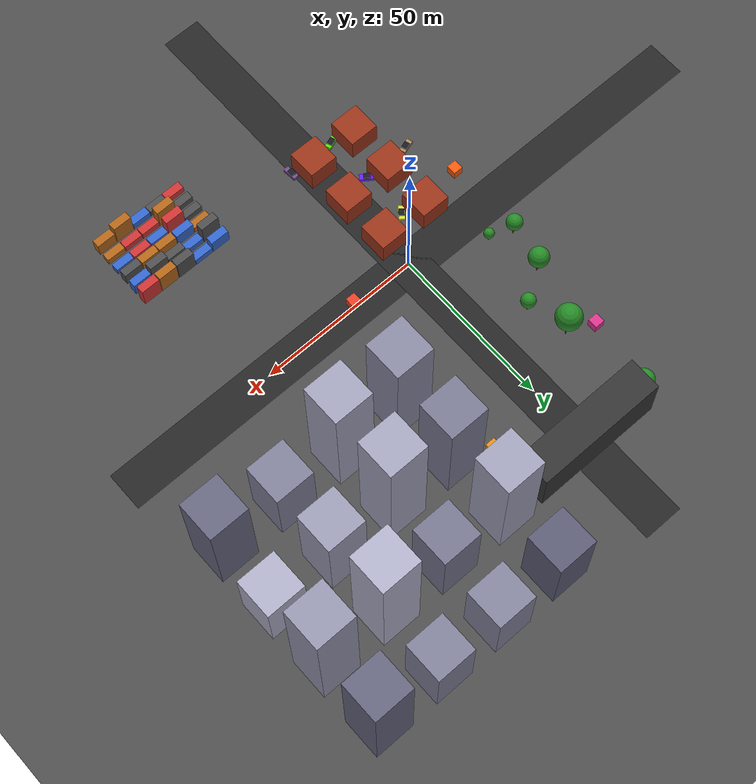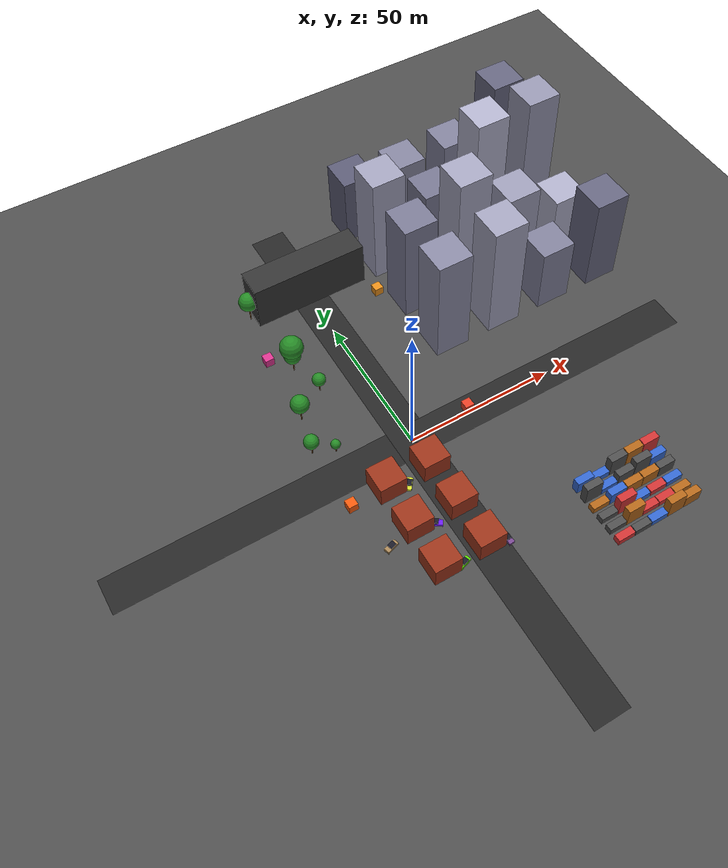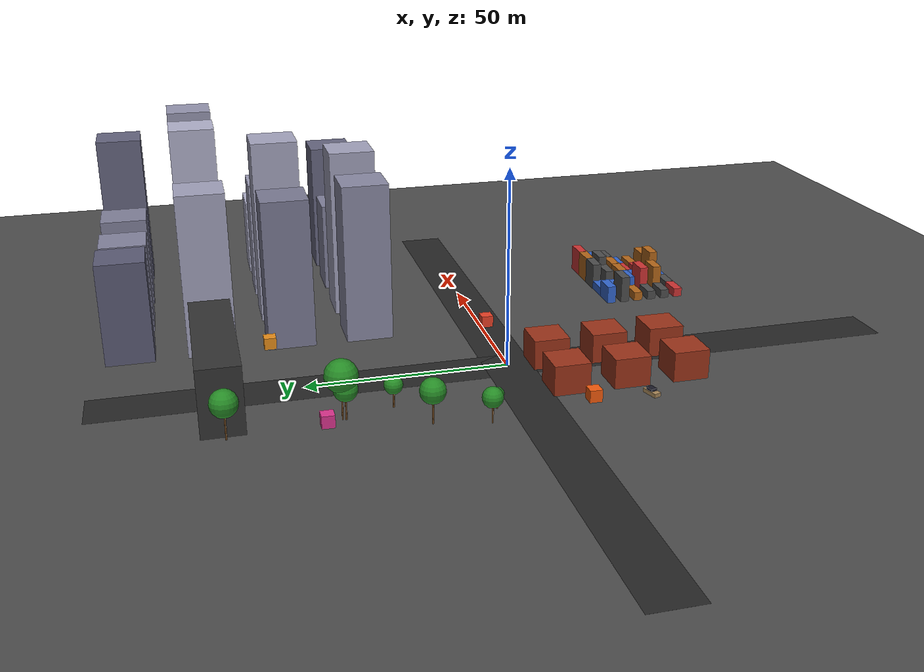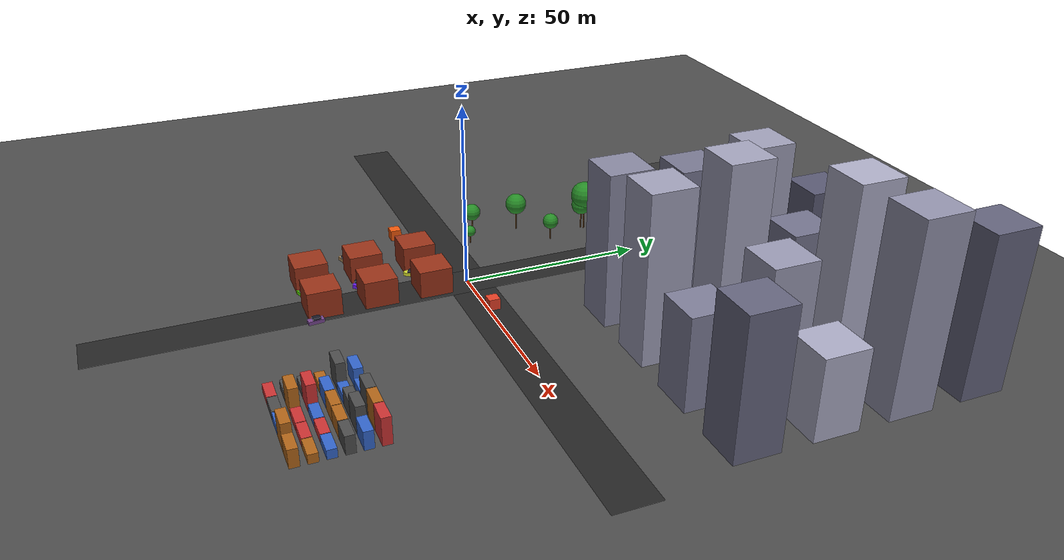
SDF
<sdf version="1.6">
 <world name="drone_city_dynamic">
  <include><uri>model://sun</uri></include>
  <model name="ground_plane">
   <static>true</static>
   <link name="link">
    <collision name="collision">
     <geometry><plane><normal>0 0 1</normal><size>400 400</size></plane></geometry>
    </collision>
    <visual name="visual">
     <geometry><plane><normal>0 0 1</normal><size>400 400</size></plane></geometry>
     <material><ambient>0.28 0.28 0.28 1</ambient><diffuse>0.3 0.3 0.3 1</diffuse></material>
    </visual>
   </link>
  </model>
  <model name="skyscraper_0_0">
   <static>true</static>
   <pose>30 30 20.635236983340796 0 0 0</pose>
   <link name="l">
    <collision name="c"><geometry><box><size>12 12 41.27047396668159</size></box></geometry></collision>
    <visual name="v">
     <geometry><box><size>12 12 41.27047396668159</size></box></geometry>
     <material><ambient>0.5356697835388005 0.5356697835388005 0.6356697835388004 1</ambient></material>
    </visual>
   </link>
  </model>
  <model name="skyscraper_0_1">
   <static>true</static>
   <pose>30 50 19.414077870680288 0 0 0</pose>
   <link name="l">
    <collision name="c"><geometry><box><size>12 12 38.828155741360575</size></box></geometry></collision>
    <visual name="v">
     <geometry><box><size>12 12 38.828155741360575</size></box></geometry>
     <material><ambient>0.4744506023521644 0.4744506023521644 0.5744506023521644 1</ambient></material>
    </visual>
   </link>
  </model>
  <model name="skyscraper_0_2">
   <static>true</static>
   <pose>30 70 20.96522107897338 0 0 0</pose>
   <link name="l">
    <collision name="c"><geometry><box><size>12 12 41.93044215794676</size></box></geometry></collision>
    <visual name="v">
     <geometry><box><size>12 12 41.93044215794676</size></box></geometry>
     <material><ambient>0.6274914331269397 0.6274914331269397 0.7274914331269396 1</ambient></material>
    </visual>
   </link>
  </model>
  <model name="skyscraper_0_3">
   <static>true</static>
   <pose>30 90 13.154930374189307 0 0 0</pose>
   <link name="l">
    <collision name="c"><geometry><box><size>12 12 26.309860748378615</size></box></geometry></collision>
    <visual name="v">
     <geometry><box><size>12 12 26.309860748378615</size></box></geometry>
     <material><ambient>0.3534178558720124 0.3534178558720124 0.45341785587201244 1</ambient></material>
    </visual>
   </link>
  </model>
  <model name="skyscraper_1_0">
   <static>true</static>
   <pose>50 30 22.395014628867237 0 0 0</pose>
   <link name="l">
    <collision name="c"><geometry><box><size>12 12 44.790029257734474</size></box></geometry></collision>
    <visual name="v">
     <geometry><box><size>12 12 44.790029257734474</size></box></geometry>
     <material><ambient>0.6317012608967205 0.6317012608967205 0.7317012608967205 1</ambient></material>
    </visual>
   </link>
  </model>
  <model name="skyscraper_1_1">
   <static>true</static>
   <pose>50 50 24.297275973228295 0 0 0</pose>
   <link name="l">
    <collision name="c"><geometry><box><size>12 12 48.59455194645659</size></box></geometry></collision>
    <visual name="v">
     <geometry><box><size>12 12 48.59455194645659</size></box></geometry>
     <material><ambient>0.6408094691736093 0.6408094691736093 0.7408094691736092 1</ambient></material>
    </visual>
   </link>
  </model>
  <model name="skyscraper_1_2">
   <static>true</static>
   <pose>50 70 13.481964010929428 0 0 0</pose>
   <link name="l">
    <collision name="c"><geometry><box><size>12 12 26.963928021858855</size></box></geometry></collision>
    <visual name="v">
     <geometry><box><size>12 12 26.963928021858855</size></box></geometry>
     <material><ambient>0.4574430193845544 0.4574430193845544 0.5574430193845544 1</ambient></material>
    </visual>
   </link>
  </model>
  <model name="skyscraper_1_3">
   <static>true</static>
   <pose>50 90 11.992777334726636 0 0 0</pose>
   <link name="l">
    <collision name="c"><geometry><box><size>12 12 23.985554669453272</size></box></geometry></collision>
    <visual name="v">
     <geometry><box><size>12 12 23.985554669453272</size></box></geometry>
     <material><ambient>0.5120321333086976 0.5120321333086976 0.6120321333086975 1</ambient></material>
    </visual>
   </link>
  </model>
  <model name="skyscraper_2_0">
   <static>true</static>
   <pose>70 30 12.228747518376547 0 0 0</pose>
   <link name="l">
    <collision name="c"><geometry><box><size>12 12 24.457495036753095</size></box></geometry></collision>
    <visual name="v">
     <geometry><box><size>12 12 24.457495036753095</size></box></geometry>
     <material><ambient>0.5001507072259986 0.5001507072259986 0.6001507072259986 1</ambient></material>
    </visual>
   </link>
  </model>
  <model name="skyscraper_2_1">
   <static>true</static>
   <pose>70 50 16.04966570429808 0 0 0</pose>
   <link name="l">
    <collision name="c"><geometry><box><size>12 12 32.09933140859616</size></box></geometry></collision>
    <visual name="v">
     <geometry><box><size>12 12 32.09933140859616</size></box></geometry>
     <material><ambient>0.605271344546852 0.605271344546852 0.705271344546852 1</ambient></material>
    </visual>
   </link>
  </model>
  <model name="skyscraper_2_2">
   <static>true</static>
   <pose>70 70 24.300799893178834 0 0 0</pose>
   <link name="l">
    <collision name="c"><geometry><box><size>12 12 48.60159978635767</size></box></geometry></collision>
    <visual name="v">
     <geometry><box><size>12 12 48.60159978635767</size></box></geometry>
     <material><ambient>0.6875622062971154 0.6875622062971154 0.7875622062971154 1</ambient></material>
    </visual>
   </link>
  </model>
  <model name="skyscraper_2_3">
   <static>true</static>
   <pose>70 90 12.302982572663584 0 0 0</pose>
   <link name="l">
    <collision name="c"><geometry><box><size>12 12 24.60596514532717</size></box></geometry></collision>
    <visual name="v">
     <geometry><box><size>12 12 24.60596514532717</size></box></geometry>
     <material><ambient>0.4988964816763011 0.4988964816763011 0.598896481676301 1</ambient></material>
    </visual>
   </link>
  </model>
  <model name="skyscraper_3_0">
   <static>true</static>
   <pose>90 30 18.08607729387883 0 0 0</pose>
   <link name="l">
    <collision name="c"><geometry><box><size>12 12 36.17215458775766</size></box></geometry></collision>
    <visual name="v">
     <geometry><box><size>12 12 36.17215458775766</size></box></geometry>
     <material><ambient>0.3970688049574158 0.3970688049574158 0.4970688049574158 1</ambient></material>
    </visual>
   </link>
  </model>
  <model name="skyscraper_3_1">
   <static>true</static>
   <pose>90 50 10.604856763700575 0 0 0</pose>
   <link name="l">
    <collision name="c"><geometry><box><size>12 12 21.20971352740115</size></box></geometry></collision>
    <visual name="v">
     <geometry><box><size>12 12 21.20971352740115</size></box></geometry>
     <material><ambient>0.6772954877257132 0.6772954877257132 0.7772954877257132 1</ambient></material>
    </visual>
   </link>
  </model>
  <model name="skyscraper_3_2">
   <static>true</static>
   <pose>90 70 24.5920721061718 0 0 0</pose>
   <link name="l">
    <collision name="c"><geometry><box><size>12 12 49.1841442123436</size></box></geometry></collision>
    <visual name="v">
     <geometry><box><size>12 12 49.1841442123436</size></box></geometry>
     <material><ambient>0.5821699728505987 0.5821699728505987 0.6821699728505987 1</ambient></material>
    </visual>
   </link>
  </model>
  <model name="skyscraper_3_3">
   <static>true</static>
   <pose>90 90 21.018922123399083 0 0 0</pose>
   <link name="l">
    <collision name="c"><geometry><box><size>12 12 42.037844246798166</size></box></geometry></collision>
    <visual name="v">
     <geometry><box><size>12 12 42.037844246798166</size></box></geometry>
     <material><ambient>0.39161452882863085 0.39161452882863085 0.4916145288286309 1</ambient></material>
    </visual>
   </link>
  </model>
  <model name="park_tree_3">
   <static>true</static>
   <pose>-18.62149721458016 42.97465226973057 0 0 0 0</pose>
   <link name="l">
    <visual name="t">
     <pose>0 0 2.856852793145233 0 0 0</pose>
     <geometry><cylinder><radius>0.2</radius><length>5.713705586290466</length></cylinder></geometry>
     <material><ambient>0.4 0.25 0.1 1</ambient></material>
    </visual>
    <collision name="c">
     <pose>0 0 2.856852793145233 0 0 0</pose>
     <geometry><cylinder><radius>0.2</radius><length>5.713705586290466</length></cylinder></geometry>
    </collision>
    <visual name="canopy">
     <pose>0 0 7.570558379435699 0 0 0</pose>
     <geometry><sphere><radius>2.856852793145233</radius></sphere></geometry>
     <material><ambient>0.1 0.5 0.1 1</ambient><diffuse>0.15 0.55 0.15 1</diffuse></material>
    </visual>
    <collision name="canopy_c">
     <pose>0 0 7.570558379435699 0 0 0</pose>
     <geometry><sphere><radius>2.856852793145233</radius></sphere></geometry>
    </collision>
   </link>
  </model>
  <model name="park_tree_11">
   <static>true</static>
   <pose>-15.27802046111907 31.584910680102244 0 0 0 0</pose>
   <link name="l">
    <visual name="t">
     <pose>0 0 2.222361402133563 0 0 0</pose>
     <geometry><cylinder><radius>0.2</radius><length>4.444722804267126</length></cylinder></geometry>
     <material><ambient>0.4 0.25 0.1 1</ambient></material>
    </visual>
    <collision name="c">
     <pose>0 0 2.222361402133563 0 0 0</pose>
     <geometry><cylinder><radius>0.2</radius><length>4.444722804267126</length></cylinder></geometry>
    </collision>
    <visual name="canopy">
     <pose>0 0 5.667084206400689 0 0 0</pose>
     <geometry><sphere><radius>2.222361402133563</radius></sphere></geometry>
     <material><ambient>0.1 0.5 0.1 1</ambient><diffuse>0.15 0.55 0.15 1</diffuse></material>
    </visual>
    <collision name="canopy_c">
     <pose>0 0 5.667084206400689 0 0 0</pose>
     <geometry><sphere><radius>2.222361402133563</radius></sphere></geometry>
    </collision>
   </link>
  </model>
  <model name="park_tree_15">
   <static>true</static>
   <pose>-21.160108460046395 69.45326392263898 0 0 0 0</pose>
   <link name="l">
    <visual name="t">
     <pose>0 0 3.2362590580399315 0 0 0</pose>
     <geometry><cylinder><radius>0.2</radius><length>6.472518116079863</length></cylinder></geometry>
     <material><ambient>0.4 0.25 0.1 1</ambient></material>
    </visual>
    <collision name="c">
     <pose>0 0 3.2362590580399315 0 0 0</pose>
     <geometry><cylinder><radius>0.2</radius><length>6.472518116079863</length></cylinder></geometry>
    </collision>
    <visual name="canopy">
     <pose>0 0 8.708777174119795 0 0 0</pose>
     <geometry><sphere><radius>3.2362590580399315</radius></sphere></geometry>
     <material><ambient>0.1 0.5 0.1 1</ambient><diffuse>0.15 0.55 0.15 1</diffuse></material>
    </visual>
    <collision name="canopy_c">
     <pose>0 0 8.708777174119795 0 0 0</pose>
     <geometry><sphere><radius>3.2362590580399315</radius></sphere></geometry>
    </collision>
   </link>
  </model>
  <model name="park_tree_23">
   <static>true</static>
   <pose>-25.400219651691017 24.72558888166107 0 0 0 0</pose>
   <link name="l">
    <visual name="t">
     <pose>0 0 3.0388658132582176 0 0 0</pose>
     <geometry><cylinder><radius>0.2</radius><length>6.077731626516435</length></cylinder></geometry>
     <material><ambient>0.4 0.25 0.1 1</ambient></material>
    </visual>
    <collision name="c">
     <pose>0 0 3.0388658132582176 0 0 0</pose>
     <geometry><cylinder><radius>0.2</radius><length>6.077731626516435</length></cylinder></geometry>
    </collision>
    <visual name="canopy">
     <pose>0 0 8.116597439774653 0 0 0</pose>
     <geometry><sphere><radius>3.0388658132582176</radius></sphere></geometry>
     <material><ambient>0.1 0.5 0.1 1</ambient><diffuse>0.15 0.55 0.15 1</diffuse></material>
    </visual>
    <collision name="canopy_c">
     <pose>0 0 8.116597439774653 0 0 0</pose>
     <geometry><sphere><radius>3.0388658132582176</radius></sphere></geometry>
    </collision>
   </link>
  </model>
  <model name="park_tree_27">
   <static>true</static>
   <pose>-18.248493358041856 43.746914577952865 0 0 0 0</pose>
   <link name="l">
    <visual name="t">
     <pose>0 0 3.90751631302952 0 0 0</pose>
     <geometry><cylinder><radius>0.2</radius><length>7.81503262605904</length></cylinder></geometry>
     <material><ambient>0.4 0.25 0.1 1</ambient></material>
    </visual>
    <collision name="c">
     <pose>0 0 3.90751631302952 0 0 0</pose>
     <geometry><cylinder><radius>0.2</radius><length>7.81503262605904</length></cylinder></geometry>
    </collision>
    <visual name="canopy">
     <pose>0 0 10.72254893908856 0 0 0</pose>
     <geometry><sphere><radius>3.90751631302952</radius></sphere></geometry>
     <material><ambient>0.1 0.5 0.1 1</ambient><diffuse>0.15 0.55 0.15 1</diffuse></material>
    </visual>
    <collision name="canopy_c">
     <pose>0 0 10.72254893908856 0 0 0</pose>
     <geometry><sphere><radius>3.90751631302952</radius></sphere></geometry>
    </collision>
   </link>
  </model>
  <model name="park_tree_31">
   <static>true</static>
   <pose>-21.81175090515194 8.929577405163158 0 0 0 0</pose>
   <link name="l">
    <visual name="t">
     <pose>0 0 1.560986913251723 0 0 0</pose>
     <geometry><cylinder><radius>0.2</radius><length>3.121973826503446</length></cylinder></geometry>
     <material><ambient>0.4 0.25 0.1 1</ambient></material>
    </visual>
    <collision name="c">
     <pose>0 0 1.560986913251723 0 0 0</pose>
     <geometry><cylinder><radius>0.2</radius><length>3.121973826503446</length></cylinder></geometry>
    </collision>
    <visual name="canopy">
     <pose>0 0 3.6829607397551687 0 0 0</pose>
     <geometry><sphere><radius>1.560986913251723</radius></sphere></geometry>
     <material><ambient>0.1 0.5 0.1 1</ambient><diffuse>0.15 0.55 0.15 1</diffuse></material>
    </visual>
    <collision name="canopy_c">
     <pose>0 0 3.6829607397551687 0 0 0</pose>
     <geometry><sphere><radius>1.560986913251723</radius></sphere></geometry>
    </collision>
   </link>
  </model>
  <model name="park_tree_33">
   <static>true</static>
   <pose>-28.390922521476426 11.911568369973253 0 0 0 0</pose>
   <link name="l">
    <visual name="t">
     <pose>0 0 2.4395068705527 0 0 0</pose>
     <geometry><cylinder><radius>0.2</radius><length>4.8790137411054</length></cylinder></geometry>
     <material><ambient>0.4 0.25 0.1 1</ambient></material>
    </visual>
    <collision name="c">
     <pose>0 0 2.4395068705527 0 0 0</pose>
     <geometry><cylinder><radius>0.2</radius><length>4.8790137411054</length></cylinder></geometry>
    </collision>
    <visual name="canopy">
     <pose>0 0 6.3185206116581 0 0 0</pose>
     <geometry><sphere><radius>2.4395068705527</radius></sphere></geometry>
     <material><ambient>0.1 0.5 0.1 1</ambient><diffuse>0.15 0.55 0.15 1</diffuse></material>
    </visual>
    <collision name="canopy_c">
     <pose>0 0 6.3185206116581 0 0 0</pose>
     <geometry><sphere><radius>2.4395068705527</radius></sphere></geometry>
    </collision>
   </link>
  </model>
  <model name="container_0_0">
   <static>true</static>
   <pose>35 -60 1.2 0 0 0</pose>
   <link name="l">
    <collision name="c"><geometry><box><size>5.8 2.4 2.4</size></box></geometry></collision>
    <visual name="v">
     <geometry><box><size>5.8 2.4 2.4</size></box></geometry>
     <material><ambient>0.8 0.2 0.2 1</ambient></material>
    </visual>
   </link>
  </model>
  <model name="container_1_0">
   <static>true</static>
   <pose>41 -60 1.2 0 0 0</pose>
   <link name="l">
    <collision name="c"><geometry><box><size>5.8 2.4 2.4</size></box></geometry></collision>
    <visual name="v">
     <geometry><box><size>5.8 2.4 2.4</size></box></geometry>
     <material><ambient>0.3 0.3 0.3 1</ambient></material>
    </visual>
   </link>
  </model>
  <model name="container_2_0">
   <static>true</static>
   <pose>47 -60 1.2 0 0 0</pose>
   <link name="l">
    <collision name="c"><geometry><box><size>5.8 2.4 2.4</size></box></geometry></collision>
    <visual name="v">
     <geometry><box><size>5.8 2.4 2.4</size></box></geometry>
     <material><ambient>0.2 0.4 0.8 1</ambient></material>
    </visual>
   </link>
  </model>
  <model name="container_3_2">
   <static>true</static>
   <pose>53 -60 3.5999999999999996 0 0 0</pose>
   <link name="l">
    <collision name="c"><geometry><box><size>5.8 2.4 7.199999999999999</size></box></geometry></collision>
    <visual name="v">
     <geometry><box><size>5.8 2.4 7.199999999999999</size></box></geometry>
     <material><ambient>0.7 0.4 0.1 1</ambient></material>
    </visual>
   </link>
  </model>
  <model name="container_4_1">
   <static>true</static>
   <pose>59 -60 2.4 0 0 0</pose>
   <link name="l">
    <collision name="c"><geometry><box><size>5.8 2.4 4.8</size></box></geometry></collision>
    <visual name="v">
     <geometry><box><size>5.8 2.4 4.8</size></box></geometry>
     <material><ambient>0.7 0.4 0.1 1</ambient></material>
    </visual>
   </link>
  </model>
  <model name="container_5_0">
   <static>true</static>
   <pose>35 -56 1.2 0 0 0</pose>
   <link name="l">
    <collision name="c"><geometry><box><size>5.8 2.4 2.4</size></box></geometry></collision>
    <visual name="v">
     <geometry><box><size>5.8 2.4 2.4</size></box></geometry>
     <material><ambient>0.3 0.3 0.3 1</ambient></material>
    </visual>
   </link>
  </model>
  <model name="container_6_2">
   <static>true</static>
   <pose>41 -56 3.5999999999999996 0 0 0</pose>
   <link name="l">
    <collision name="c"><geometry><box><size>5.8 2.4 7.199999999999999</size></box></geometry></collision>
    <visual name="v">
     <geometry><box><size>5.8 2.4 7.199999999999999</size></box></geometry>
     <material><ambient>0.7 0.4 0.1 1</ambient></material>
    </visual>
   </link>
  </model>
  <model name="container_7_0">
   <static>true</static>
   <pose>47 -56 1.2 0 0 0</pose>
   <link name="l">
    <collision name="c"><geometry><box><size>5.8 2.4 2.4</size></box></geometry></collision>
    <visual name="v">
     <geometry><box><size>5.8 2.4 2.4</size></box></geometry>
     <material><ambient>0.8 0.2 0.2 1</ambient></material>
    </visual>
   </link>
  </model>
  <model name="container_8_0">
   <static>true</static>
   <pose>53 -56 1.2 0 0 0</pose>
   <link name="l">
    <collision name="c"><geometry><box><size>5.8 2.4 2.4</size></box></geometry></collision>
    <visual name="v">
     <geometry><box><size>5.8 2.4 2.4</size></box></geometry>
     <material><ambient>0.8 0.2 0.2 1</ambient></material>
    </visual>
   </link>
  </model>
  <model name="container_9_0">
   <static>true</static>
   <pose>59 -56 1.2 0 0 0</pose>
   <link name="l">
    <collision name="c"><geometry><box><size>5.8 2.4 2.4</size></box></geometry></collision>
    <visual name="v">
     <geometry><box><size>5.8 2.4 2.4</size></box></geometry>
     <material><ambient>0.7 0.4 0.1 1</ambient></material>
    </visual>
   </link>
  </model>
  <model name="container_10_0">
   <static>true</static>
   <pose>35 -52 1.2 0 0 0</pose>
   <link name="l">
    <collision name="c"><geometry><box><size>5.8 2.4 2.4</size></box></geometry></collision>
    <visual name="v">
     <geometry><box><size>5.8 2.4 2.4</size></box></geometry>
     <material><ambient>0.3 0.3 0.3 1</ambient></material>
    </visual>
   </link>
  </model>
  <model name="container_11_2">
   <static>true</static>
   <pose>41 -52 3.5999999999999996 0 0 0</pose>
   <link name="l">
    <collision name="c"><geometry><box><size>5.8 2.4 7.199999999999999</size></box></geometry></collision>
    <visual name="v">
     <geometry><box><size>5.8 2.4 7.199999999999999</size></box></geometry>
     <material><ambient>0.8 0.2 0.2 1</ambient></material>
    </visual>
   </link>
  </model>
  <model name="container_12_0">
   <static>true</static>
   <pose>47 -52 1.2 0 0 0</pose>
   <link name="l">
    <collision name="c"><geometry><box><size>5.8 2.4 2.4</size></box></geometry></collision>
    <visual name="v">
     <geometry><box><size>5.8 2.4 2.4</size></box></geometry>
     <material><ambient>0.2 0.4 0.8 1</ambient></material>
    </visual>
   </link>
  </model>
  <model name="container_13_0">
   <static>true</static>
   <pose>53 -52 1.2 0 0 0</pose>
   <link name="l">
    <collision name="c"><geometry><box><size>5.8 2.4 2.4</size></box></geometry></collision>
    <visual name="v">
     <geometry><box><size>5.8 2.4 2.4</size></box></geometry>
     <material><ambient>0.8 0.2 0.2 1</ambient></material>
    </visual>
   </link>
  </model>
  <model name="container_14_0">
   <static>true</static>
   <pose>59 -52 1.2 0 0 0</pose>
   <link name="l">
    <collision name="c"><geometry><box><size>5.8 2.4 2.4</size></box></geometry></collision>
    <visual name="v">
     <geometry><box><size>5.8 2.4 2.4</size></box></geometry>
     <material><ambient>0.2 0.4 0.8 1</ambient></material>
    </visual>
   </link>
  </model>
  <model name="container_15_0">
   <static>true</static>
   <pose>35 -48 1.2 0 0 0</pose>
   <link name="l">
    <collision name="c"><geometry><box><size>5.8 2.4 2.4</size></box></geometry></collision>
    <visual name="v">
     <geometry><box><size>5.8 2.4 2.4</size></box></geometry>
     <material><ambient>0.7 0.4 0.1 1</ambient></material>
    </visual>
   </link>
  </model>
  <model name="container_16_1">
   <static>true</static>
   <pose>41 -48 2.4 0 0 0</pose>
   <link name="l">
    <collision name="c"><geometry><box><size>5.8 2.4 4.8</size></box></geometry></collision>
    <visual name="v">
     <geometry><box><size>5.8 2.4 4.8</size></box></geometry>
     <material><ambient>0.2 0.4 0.8 1</ambient></material>
    </visual>
   </link>
  </model>
  <model name="container_17_1">
   <static>true</static>
   <pose>47 -48 2.4 0 0 0</pose>
   <link name="l">
    <collision name="c"><geometry><box><size>5.8 2.4 4.8</size></box></geometry></collision>
    <visual name="v">
     <geometry><box><size>5.8 2.4 4.8</size></box></geometry>
     <material><ambient>0.7 0.4 0.1 1</ambient></material>
    </visual>
   </link>
  </model>
  <model name="container_18_1">
   <static>true</static>
   <pose>53 -48 2.4 0 0 0</pose>
   <link name="l">
    <collision name="c"><geometry><box><size>5.8 2.4 4.8</size></box></geometry></collision>
    <visual name="v">
     <geometry><box><size>5.8 2.4 4.8</size></box></geometry>
     <material><ambient>0.7 0.4 0.1 1</ambient></material>
    </visual>
   </link>
  </model>
  <model name="container_19_1">
   <static>true</static>
   <pose>59 -48 2.4 0 0 0</pose>
   <link name="l">
    <collision name="c"><geometry><box><size>5.8 2.4 4.8</size></box></geometry></collision>
    <visual name="v">
     <geometry><box><size>5.8 2.4 4.8</size></box></geometry>
     <material><ambient>0.3 0.3 0.3 1</ambient></material>
    </visual>
   </link>
  </model>
  <model name="container_20_2">
   <static>true</static>
   <pose>35 -44 3.5999999999999996 0 0 0</pose>
   <link name="l">
    <collision name="c"><geometry><box><size>5.8 2.4 7.199999999999999</size></box></geometry></collision>
    <visual name="v">
     <geometry><box><size>5.8 2.4 7.199999999999999</size></box></geometry>
     <material><ambient>0.3 0.3 0.3 1</ambient></material>
    </visual>
   </link>
  </model>
  <model name="container_21_0">
   <static>true</static>
   <pose>41 -44 1.2 0 0 0</pose>
   <link name="l">
    <collision name="c"><geometry><box><size>5.8 2.4 2.4</size></box></geometry></collision>
    <visual name="v">
     <geometry><box><size>5.8 2.4 2.4</size></box></geometry>
     <material><ambient>0.2 0.4 0.8 1</ambient></material>
    </visual>
   </link>
  </model>
  <model name="container_22_1">
   <static>true</static>
   <pose>47 -44 2.4 0 0 0</pose>
   <link name="l">
    <collision name="c"><geometry><box><size>5.8 2.4 4.8</size></box></geometry></collision>
    <visual name="v">
     <geometry><box><size>5.8 2.4 4.8</size></box></geometry>
     <material><ambient>0.3 0.3 0.3 1</ambient></material>
    </visual>
   </link>
  </model>
  <model name="container_23_2">
   <static>true</static>
   <pose>53 -44 3.5999999999999996 0 0 0</pose>
   <link name="l">
    <collision name="c"><geometry><box><size>5.8 2.4 7.199999999999999</size></box></geometry></collision>
    <visual name="v">
     <geometry><box><size>5.8 2.4 7.199999999999999</size></box></geometry>
     <material><ambient>0.3 0.3 0.3 1</ambient></material>
    </visual>
   </link>
  </model>
  <model name="container_24_1">
   <static>true</static>
   <pose>59 -44 2.4 0 0 0</pose>
   <link name="l">
    <collision name="c"><geometry><box><size>5.8 2.4 4.8</size></box></geometry></collision>
    <visual name="v">
     <geometry><box><size>5.8 2.4 4.8</size></box></geometry>
     <material><ambient>0.2 0.4 0.8 1</ambient></material>
    </visual>
   </link>
  </model>
  <model name="container_25_1">
   <static>true</static>
   <pose>35 -40 2.4 0 0 0</pose>
   <link name="l">
    <collision name="c"><geometry><box><size>5.8 2.4 4.8</size></box></geometry></collision>
    <visual name="v">
     <geometry><box><size>5.8 2.4 4.8</size></box></geometry>
     <material><ambient>0.2 0.4 0.8 1</ambient></material>
    </visual>
   </link>
  </model>
  <model name="container_26_0">
   <static>true</static>
   <pose>41 -40 1.2 0 0 0</pose>
   <link name="l">
    <collision name="c"><geometry><box><size>5.8 2.4 2.4</size></box></geometry></collision>
    <visual name="v">
     <geometry><box><size>5.8 2.4 2.4</size></box></geometry>
     <material><ambient>0.2 0.4 0.8 1</ambient></material>
    </visual>
   </link>
  </model>
  <model name="container_27_2">
   <static>true</static>
   <pose>47 -40 3.5999999999999996 0 0 0</pose>
   <link name="l">
    <collision name="c"><geometry><box><size>5.8 2.4 7.199999999999999</size></box></geometry></collision>
    <visual name="v">
     <geometry><box><size>5.8 2.4 7.199999999999999</size></box></geometry>
     <material><ambient>0.3 0.3 0.3 1</ambient></material>
    </visual>
   </link>
  </model>
  <model name="container_28_2">
   <static>true</static>
   <pose>53 -40 3.5999999999999996 0 0 0</pose>
   <link name="l">
    <collision name="c"><geometry><box><size>5.8 2.4 7.199999999999999</size></box></geometry></collision>
    <visual name="v">
     <geometry><box><size>5.8 2.4 7.199999999999999</size></box></geometry>
     <material><ambient>0.7 0.4 0.1 1</ambient></material>
    </visual>
   </link>
  </model>
  <model name="container_29_2">
   <static>true</static>
   <pose>59 -40 3.5999999999999996 0 0 0</pose>
   <link name="l">
    <collision name="c"><geometry><box><size>5.8 2.4 7.199999999999999</size></box></geometry></collision>
    <visual name="v">
     <geometry><box><size>5.8 2.4 7.199999999999999</size></box></geometry>
     <material><ambient>0.8 0.2 0.2 1</ambient></material>
    </visual>
   </link>
  </model>
  <model name="suburb_house_2">
   <static>true</static>
   <pose>-15 -40 2.5 0 0 0</pose>
   <link name="l">
    <collision name="c"><geometry><box><size>8 8 5</size></box></geometry></collision>
    <visual name="v">
     <geometry><box><size>8 8 5</size></box></geometry>
     <material><ambient>0.8 0.7 0.6 1</ambient></material>
    </visual>
   </link>
  </model>
  <model name="suburb_roof_2">
   <static>true</static>
   <pose>-15 -39.99 3.75 0 0 0</pose>
   <link name="l">
    <collision name="c"><geometry><box><size>9 9 7.5</size></box></geometry></collision>
    <visual name="v">
     <geometry><box><size>9 9 7.5</size></box></geometry>
     <material><ambient>0.6 0.2 0.1 1</ambient></material>
    </visual>
   </link>
  </model>
  <model name="suburb_car_2">
   <static>true</static>
   <pose>-9 -43 0 0 0 0.32971462865262235</pose>
   <link name="l">
    <collision name="c">
     <pose>0 0 0.6 0 0 0</pose>
     <geometry><box><size>4.2 1.8 1.2</size></box></geometry>
    </collision>
    <visual name="body">
     <pose>0 0 0.5 0 0 0</pose>
     <geometry><box><size>4.2 1.8 1.0</size></box></geometry>
     <material><ambient>0.3536573414225348 0.8769229634894458 0.013188621599889871 1</ambient></material>
    </visual>
    <visual name="cab">
     <pose>0.2 0 1.2 0 0 0</pose>
     <geometry><box><size>2.0 1.6 0.8</size></box></geometry>
     <material><ambient>0.1 0.1 0.15 1</ambient></material>
    </visual>
   </link>
  </model>
  <model name="suburb_house_3">
   <static>true</static>
   <pose>0 -40 2.5 0 0 0</pose>
   <link name="l">
    <collision name="c"><geometry><box><size>8 8 5</size></box></geometry></collision>
    <visual name="v">
     <geometry><box><size>8 8 5</size></box></geometry>
     <material><ambient>0.8 0.7 0.6 1</ambient></material>
    </visual>
   </link>
  </model>
  <model name="suburb_roof_3">
   <static>true</static>
   <pose>0 -39.99 3.75 0 0 0</pose>
   <link name="l">
    <collision name="c"><geometry><box><size>9 9 7.5</size></box></geometry></collision>
    <visual name="v">
     <geometry><box><size>9 9 7.5</size></box></geometry>
     <material><ambient>0.6 0.2 0.1 1</ambient></material>
    </visual>
   </link>
  </model>
  <model name="suburb_car_3">
   <static>true</static>
   <pose>6 -43 0 0 0 1.660827391693549</pose>
   <link name="l">
    <collision name="c">
     <pose>0 0 0.6 0 0 0</pose>
     <geometry><box><size>4.2 1.8 1.2</size></box></geometry>
    </collision>
    <visual name="body">
     <pose>0 0 0.5 0 0 0</pose>
     <geometry><box><size>4.2 1.8 1.0</size></box></geometry>
     <material><ambient>0.4673603167696744 0.27785196652648236 0.5637332358693521 1</ambient></material>
    </visual>
    <visual name="cab">
     <pose>0.2 0 1.2 0 0 0</pose>
     <geometry><box><size>2.0 1.6 0.8</size></box></geometry>
     <material><ambient>0.1 0.1 0.15 1</ambient></material>
    </visual>
   </link>
  </model>
  <model name="suburb_car_5">
   <static>true</static>
   <pose>-24 -28 0 0 0 0.3078967791118858</pose>
   <link name="l">
    <collision name="c">
     <pose>0 0 0.6 0 0 0</pose>
     <geometry><box><size>4.2 1.8 1.2</size></box></geometry>
    </collision>
    <visual name="body">
     <pose>0 0 0.5 0 0 0</pose>
     <geometry><box><size>4.2 1.8 1.0</size></box></geometry>
     <material><ambient>0.6566768141986953 0.5259688800699326 0.34330297839811397 1</ambient></material>
    </visual>
    <visual name="cab">
     <pose>0.2 0 1.2 0 0 0</pose>
     <geometry><box><size>2.0 1.6 0.8</size></box></geometry>
     <material><ambient>0.1 0.1 0.15 1</ambient></material>
    </visual>
   </link>
  </model>
  <model name="suburb_house_6">
   <static>true</static>
   <pose>-15 -25 2.5 0 0 0</pose>
   <link name="l">
    <collision name="c"><geometry><box><size>8 8 5</size></box></geometry></collision>
    <visual name="v">
     <geometry><box><size>8 8 5</size></box></geometry>
     <material><ambient>0.8 0.7 0.6 1</ambient></material>
    </visual>
   </link>
  </model>
  <model name="suburb_roof_6">
   <static>true</static>
   <pose>-15 -24.99 3.75 0 0 0</pose>
   <link name="l">
    <collision name="c"><geometry><box><size>9 9 7.5</size></box></geometry></collision>
    <visual name="v">
     <geometry><box><size>9 9 7.5</size></box></geometry>
     <material><ambient>0.6 0.2 0.1 1</ambient></material>
    </visual>
   </link>
  </model>
  <model name="suburb_car_6">
   <static>true</static>
   <pose>-9 -28 0 0 0 2.523508401503216</pose>
   <link name="l">
    <collision name="c">
     <pose>0 0 0.6 0 0 0</pose>
     <geometry><box><size>4.2 1.8 1.2</size></box></geometry>
    </collision>
    <visual name="body">
     <pose>0 0 0.5 0 0 0</pose>
     <geometry><box><size>4.2 1.8 1.0</size></box></geometry>
     <material><ambient>0.41663530725214304 0.10519875023474545 0.945306632184152 1</ambient></material>
    </visual>
    <visual name="cab">
     <pose>0.2 0 1.2 0 0 0</pose>
     <geometry><box><size>2.0 1.6 0.8</size></box></geometry>
     <material><ambient>0.1 0.1 0.15 1</ambient></material>
    </visual>
   </link>
  </model>
  <model name="suburb_house_7">
   <static>true</static>
   <pose>0 -25 2.5 0 0 0</pose>
   <link name="l">
    <collision name="c"><geometry><box><size>8 8 5</size></box></geometry></collision>
    <visual name="v">
     <geometry><box><size>8 8 5</size></box></geometry>
     <material><ambient>0.8 0.7 0.6 1</ambient></material>
    </visual>
   </link>
  </model>
  <model name="suburb_roof_7">
   <static>true</static>
   <pose>0 -24.99 3.75 0 0 0</pose>
   <link name="l">
    <collision name="c"><geometry><box><size>9 9 7.5</size></box></geometry></collision>
    <visual name="v">
     <geometry><box><size>9 9 7.5</size></box></geometry>
     <material><ambient>0.6 0.2 0.1 1</ambient></material>
    </visual>
   </link>
  </model>
  <model name="suburb_house_10">
   <static>true</static>
   <pose>-15 -10 2.5 0 0 0</pose>
   <link name="l">
    <collision name="c"><geometry><box><size>8 8 5</size></box></geometry></collision>
    <visual name="v">
     <geometry><box><size>8 8 5</size></box></geometry>
     <material><ambient>0.8 0.7 0.6 1</ambient></material>
    </visual>
   </link>
  </model>
  <model name="suburb_roof_10">
   <static>true</static>
   <pose>-15 -9.99 3.75 0 0 0</pose>
   <link name="l">
    <collision name="c"><geometry><box><size>9 9 7.5</size></box></geometry></collision>
    <visual name="v">
     <geometry><box><size>9 9 7.5</size></box></geometry>
     <material><ambient>0.6 0.2 0.1 1</ambient></material>
    </visual>
   </link>
  </model>
  <model name="suburb_car_10">
   <static>true</static>
   <pose>-9 -13 0 0 0 0.9096183268826805</pose>
   <link name="l">
    <collision name="c">
     <pose>0 0 0.6 0 0 0</pose>
     <geometry><box><size>4.2 1.8 1.2</size></box></geometry>
    </collision>
    <visual name="body">
     <pose>0 0 0.5 0 0 0</pose>
     <geometry><box><size>4.2 1.8 1.0</size></box></geometry>
     <material><ambient>0.8268996176557799 0.8602512876202216 0.18111810012852436 1</ambient></material>
    </visual>
    <visual name="cab">
     <pose>0.2 0 1.2 0 0 0</pose>
     <geometry><box><size>2.0 1.6 0.8</size></box></geometry>
     <material><ambient>0.1 0.1 0.15 1</ambient></material>
    </visual>
   </link>
  </model>
  <model name="suburb_house_11">
   <static>true</static>
   <pose>0 -10 2.5 0 0 0</pose>
   <link name="l">
    <collision name="c"><geometry><box><size>8 8 5</size></box></geometry></collision>
    <visual name="v">
     <geometry><box><size>8 8 5</size></box></geometry>
     <material><ambient>0.8 0.7 0.6 1</ambient></material>
    </visual>
   </link>
  </model>
  <model name="suburb_roof_11">
   <static>true</static>
   <pose>0 -9.99 3.75 0 0 0</pose>
   <link name="l">
    <collision name="c"><geometry><box><size>9 9 7.5</size></box></geometry></collision>
    <visual name="v">
     <geometry><box><size>9 9 7.5</size></box></geometry>
     <material><ambient>0.6 0.2 0.1 1</ambient></material>
    </visual>
   </link>
  </model>
  <model name="bridge_pier1">
   <static>true</static>
   <pose>-10 70 7.5 0 0 0</pose>
   <link name="l">
    <collision name="c"><geometry><box><size>2 8 15</size></box></geometry></collision>
    <visual name="v">
     <geometry><box><size>2 8 15</size></box></geometry>
     <material><ambient>0.5 0.5 0.5 1</ambient></material>
    </visual>
   </link>
  </model>
  <model name="bridge_pier2">
   <static>true</static>
   <pose>10 70 7.5 0 0 0</pose>
   <link name="l">
    <collision name="c"><geometry><box><size>2 8 15</size></box></geometry></collision>
    <visual name="v">
     <geometry><box><size>2 8 15</size></box></geometry>
     <material><ambient>0.5 0.5 0.5 1</ambient></material>
    </visual>
   </link>
  </model>
  <model name="bridge_deck">
   <static>true</static>
   <pose>0 70 8.25 0 0 0</pose>
   <link name="l">
    <collision name="c"><geometry><box><size>40 10 16.5</size></box></geometry></collision>
    <visual name="v">
     <geometry><box><size>40 10 16.5</size></box></geometry>
     <material><ambient>0.2 0.2 0.2 1</ambient></material>
    </visual>
   </link>
  </model>
  <model name="main_road_ew">
   <static>true</static>
   <pose>0 0 0.01 0 0 0</pose>
   <link name="l">
    <visual name="v">
     <geometry><plane><normal>0 0 1</normal><size>200 12</size></plane></geometry>
     <material><ambient>0.15 0.15 0.15 1</ambient></material>
    </visual>
   </link>
  </model>
  <model name="main_road_ns">
   <static>true</static>
   <pose>0 0 0.01 0 0 1.5708</pose>
   <link name="l">
    <visual name="v">
     <geometry><plane><normal>0 0 1</normal><size>200 12</size></plane></geometry>
     <material><ambient>0.15 0.15 0.15 1</ambient></material>
    </visual>
   </link>
  </model>
  <model name="dyn_block_0">
   <pose>20.0 0.0 4.0 0 0 0</pose>
   <link name="link">
    <gravity>false</gravity>
    <kinematic>true</kinematic>
    <inertial><mass>1.0</mass><inertia><ixx>1</ixx><iyy>1</iyy><izz>1</izz></inertia></inertial>
    <collision name="c"><geometry><box><size>3 3 3</size></box></geometry></collision>
    <visual name="v">
     <geometry><box><size>3 3 3</size></box></geometry>
     <material><ambient>0.9 0.25 0.15 1</ambient><diffuse>0.9 0.25 0.15 1</diffuse></material>
    </visual>
   </link>
  </model>
  <model name="dyn_block_1">
   <pose>20.0 56.0 4.0 0 0 0</pose>
   <link name="link">
    <gravity>false</gravity>
    <kinematic>true</kinematic>
    <inertial><mass>1.0</mass><inertia><ixx>1</ixx><iyy>1</iyy><izz>1</izz></inertia></inertial>
    <collision name="c"><geometry><box><size>3 3 3</size></box></geometry></collision>
    <visual name="v">
     <geometry><box><size>3 3 3</size></box></geometry>
     <material><ambient>0.9 0.55 0.10 1</ambient><diffuse>0.9 0.55 0.10 1</diffuse></material>
    </visual>
   </link>
  </model>
  <model name="dyn_block_2">
   <pose>-25.0 48.0 4.0 0 0 0</pose>
   <link name="link">
    <gravity>false</gravity>
    <kinematic>true</kinematic>
    <inertial><mass>1.0</mass><inertia><ixx>1</ixx><iyy>1</iyy><izz>1</izz></inertia></inertial>
    <collision name="c"><geometry><box><size>3 3 3</size></box></geometry></collision>
    <visual name="v">
     <geometry><box><size>3 3 3</size></box></geometry>
     <material><ambient>0.85 0.20 0.55 1</ambient><diffuse>0.85 0.20 0.55 1</diffuse></material>
    </visual>
   </link>
  </model>
  <model name="dyn_block_3">
   <pose>-28.0 -12.0 4.0 0 0 0</pose>
   <link name="link">
    <gravity>false</gravity>
    <kinematic>true</kinematic>
    <inertial><mass>1.0</mass><inertia><ixx>1</ixx><iyy>1</iyy><izz>1</izz></inertia></inertial>
    <collision name="c"><geometry><box><size>3 3 3</size></box></geometry></collision>
    <visual name="v">
     <geometry><box><size>3 3 3</size></box></geometry>
     <material><ambient>0.95 0.35 0.05 1</ambient><diffuse>0.95 0.35 0.05 1</diffuse></material>
    </visual>
   </link>
  </model>
 </world>
</sdf>
